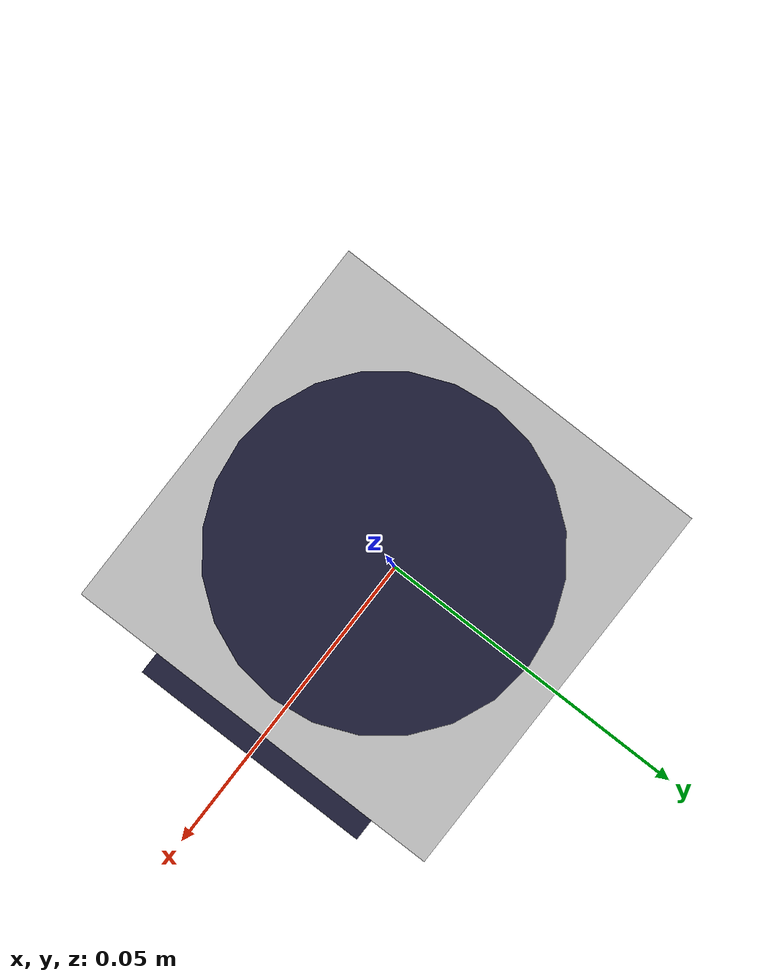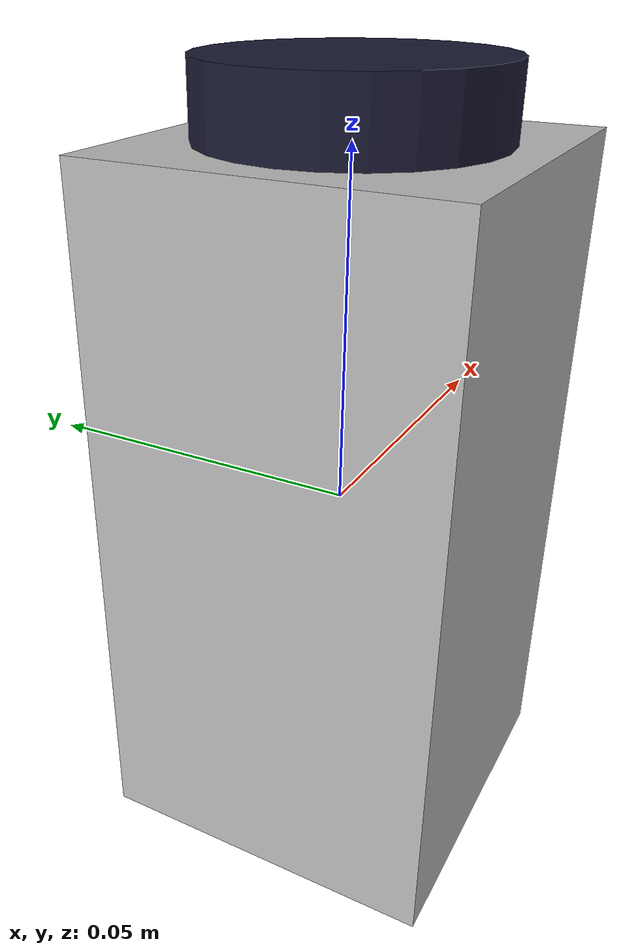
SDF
<?xml version="1.0" ?>
    <sdf version="1.5">
        <model name="camera">
            <pose>0 0 0 0 0 0</pose>

            <link name="Main">
                <pose>0 0 0 0 -1.570796327 0</pose>
                <inertial>
                    <mass>0.8</mass>
                    <inertia>
                        <ixx>0.8</ixx>
                        <iyy>0.8</iyy>
                        <izz>0.8</izz>
                    </inertia>
                </inertial>
                <collision name="collision">
                <geometry>
                    <box>
                    <size>0.1 0.05 0.05</size>
                    </box>
                </geometry>
                </collision>
                <visual name="visual">
                <geometry>
                    <box>
                    <size>0.1 0.05 0.05</size>
                    </box>
                </geometry>
                </visual>

                <sensor name="camera_forward" type="camera">
                <pose>0 0 0 0 0 0</pose>
                <topic>camera_forward</topic>
                <camera>
                    <box_type>full_2d</box_type>
                    <horizontal_fov>1.047</horizontal_fov>
                    <image>
                    <width>800</width>
                    <height>600</height>
                    </image>
                    <clip>
                    <near>0.1</near>
                    <far>10</far>
                    </clip>
                    <save enabled="true">
                    <path>../tmp_files/cam_forward</path>
                    </save>
                    <distortion>
                    <k1>1</k1>
                    <k2>10</k2>
                    <k3>5</k3>
                    <p1>10</p1>
                    <p2>10</p2>
                    <center>0.5 0.5</center>
                    </distortion>
                    <lens>
                    <type>stereographic</type>
                    <scale_to_hfov>true</scale_to_hfov>
                    <cutoff_angle>1.5707963267948966</cutoff_angle>
                    <env_texture_size>256</env_texture_size>
                    </lens>
                </camera>
                <always_on>1</always_on>
                <update_rate>24</update_rate>
                <visualize>true</visualize>

                <plugin
                    filename="gz-sim-camera-video-recorder-system"
                    name="gz::sim::systems::CameraVideoRecorder">
                    <service>camera_forward</service>
                    <use_sim_time>true</use_sim_time>
                    <fps>24</fps>
                </plugin>

                </sensor>

                <sensor name="camera_down" type="camera">
                <pose>0 0 0 0 1.5708 0</pose>
                <topic>camera_down</topic>
                <camera>
                    <box_type>full_2d</box_type>
                    <horizontal_fov>1.047</horizontal_fov>
                    <image>
                    <width>800</width>
                    <height>600</height>
                    </image>
                    <clip>
                    <near>0.1</near>
                    <far>10</far>
                    </clip>
                    <save enabled="true">
                    <path>../tmp_files/cam_down</path>
                    </save>
                    <distortion>
                    <k1>1</k1>
                    <k2>10</k2>
                    <k3>5</k3>
                    <p1>10</p1>
                    <p2>10</p2>
                    <center>0.5 0.5</center>
                    </distortion>
                    <lens>
                    <type>stereographic</type>
                    <scale_to_hfov>true</scale_to_hfov>
                    <cutoff_angle>1.5707963267948966</cutoff_angle>
                    <env_texture_size>256</env_texture_size>
                    </lens>
                </camera>
                <always_on>1</always_on>
                <update_rate>24</update_rate>
                <visualize>true</visualize>

                <plugin
                    filename="gz-sim-camera-video-recorder-system"
                    name="gz::sim::systems::CameraVideoRecorder">
                    <service>camera_down</service>
                    <use_sim_time>true</use_sim_time>
                    <fps>24</fps>
                </plugin>

                </sensor>

            </link>

            <link name="Lens_Forward">

                <!-- Vertically offset the top cylinder by the length of the bottom
                    cylinder and half the length of this cylinder. -->
                <pose>0 0 0.055 0 0 0</pose>

                <inertial>
                    <mass>0.1</mass>
                    <pose>0 0 -0.055 0 0 0</pose>
                    <inertia>
                        <ixx>0.1</ixx>
                        <iyy>0.1</iyy>
                        <izz>0.1</izz>
                    </inertia>
                </inertial>

                <collision name="top_collision">
                <geometry>
                    <cylinder>
                    <!-- Radius and length provided by Velodyne -->
                    <radius>0.02</radius>
                    <length>0.01</length>
                    </cylinder>
                </geometry>
                </collision>

                <!-- The visual is mostly a copy of the collision -->
                <visual name="top_visual">
                <geometry>
                    <cylinder>
                    <radius>0.02</radius>
                    <length>0.01</length>
                    </cylinder>
                </geometry>

                <material> <!-- Wheel material -->
                    <ambient>0.1 0.1 0.1 1</ambient>
                    <diffuse>0.1 0.1 0.2 1</diffuse>
                    <specular>0 0 0 0</specular>
                    <emissive>0 0 0 1</emissive>
                </material> <!-- End wheel material -->

                </visual>

            </link>

            <link name="Lens_Down">

                <!-- Vertically offset the top cylinder by the length of the bottom
                    cylinder and half the length of this cylinder. -->
                <pose>0.03 0 -0.025 0 0 0</pose>

                <inertial>
                    <mass>0.1</mass>
                    <pose>-0.03 0 0.025 0 0 0</pose>
                    <inertia>
                        <ixx>0.1</ixx>
                        <iyy>0.1</iyy>
                        <izz>0.1</izz>
                    </inertia>
                </inertial>

                <collision name="top_collision">
                <geometry>
                    <box>
                    <size>0.01 0.04 0.04</size>
                    </box>
                </geometry>
                </collision>

                <!-- The visual is mostly a copy of the collision -->
                <visual name="top_visual">
                <geometry>
                    <box>
                    <size>0.01 0.04 0.04</size>
                    </box>
                </geometry>

                <material> <!-- Wheel material -->
                    <ambient>0.1 0.1 0.1 1</ambient>
                    <diffuse>0.1 0.1 0.2 1</diffuse>
                    <specular>0 0 0 0</specular>
                    <emissive>0 0 0 1</emissive>
                </material> <!-- End wheel material -->

                </visual>

            </link>

            <joint type="fixed" name="main_and_lens_forward">
                <pose>0 0 0.055 0 0 0</pose>
                <parent>Main</parent>
                <child>Lens_Forward</child>
            </joint>

            <joint type="fixed" name="main_and_top_right">
                <pose>0.03 0 -0.025 0 0 0</pose>
                <parent>Main</parent>
                <child>Lens_Down</child>
            </joint>

            <plugin
                filename="Position_Control"
                name="gz::sim::v7::systems::PositionController">
                <timestep_precision>10</timestep_precision>
                <xyz_offset> 0 0 0</xyz_offset>
                <rpy_offset> 0 0 0</rpy_offset>
            </plugin>

            <plugin
                filename="Pose_To_File"
                name="gz::sim::v7::systems::PoseToFile">
            </plugin>
        </model>
    </sdf>
